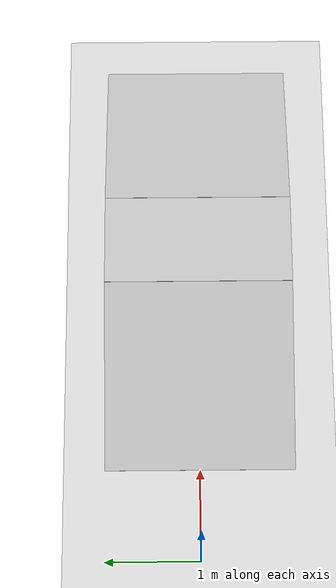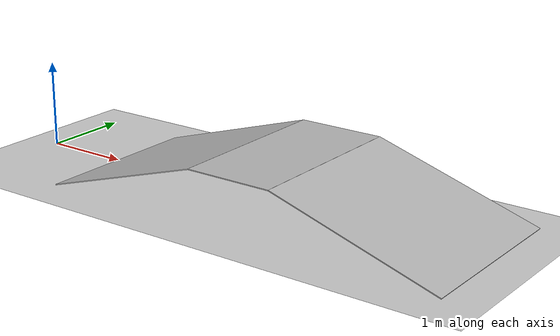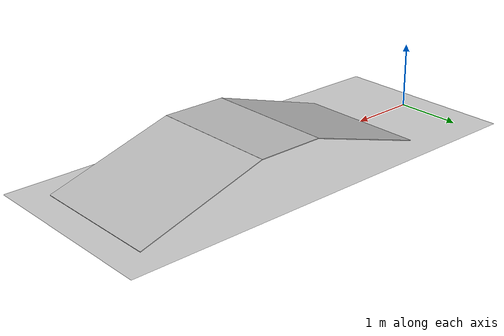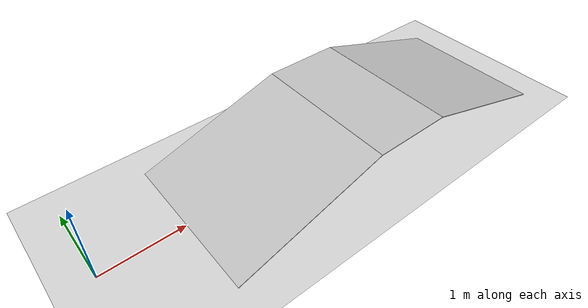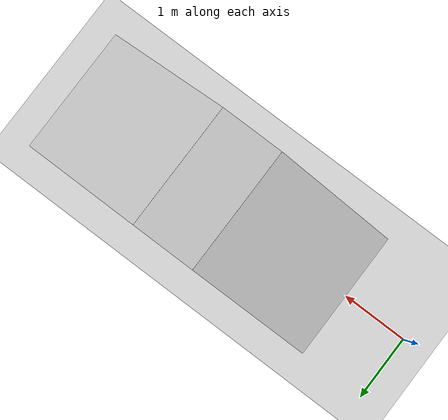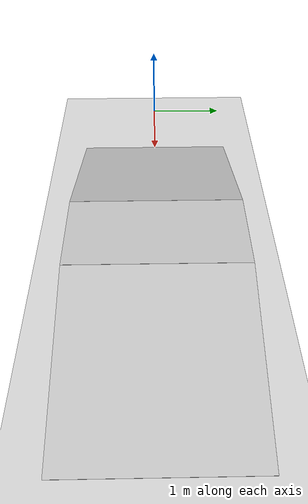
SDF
<?xml version="1.0" ?>
<sdf version="1.4">
  <world name="default">
    <include>
      <uri>model://ground_plane</uri>
    </include>
    <include>
      <uri>model://sun</uri>
    </include>
    <include>
    <uri>model://gazebo_worlds/models/slope</uri>
      <pose>0 0 0 0 0 0</pose>
      <static>true</static>
    </include>

    <physics type="ode">
      <gravity>0 0 -9.81</gravity>
    </physics>
  </world>
</sdf>

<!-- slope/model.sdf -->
<sdf version="1.4">

  <model name="slope">
    <static>true</static>
    <pose>0.5 0 0 0 0 0</pose>

    <link name="slope_up">
    <pose>1.95533648913 0 0.295520206661 0 -0.3 0</pose>
      <collision name="collision">
        <geometry>
          <box>
            <size>2.0 2 0.01</size>
          </box>
        </geometry>
      </collision>
      <visual name="visual">
        <geometry>
          <box>
            <size>2.0 2 0.01</size>
          </box>
        </geometry>
      </visual>
    </link>

    <link name='slope_zero'>
      <pose>3.41067297825 0 0.591040413323 0 0 0</pose>
      <collision name="collision">
        <geometry>
          <box>
            <size>1.0 2 0.01</size>
          </box>
        </geometry>
      </collision>
      <visual name="visual">
        <geometry>
          <box>
            <size>1.0 2 0.01</size>
          </box>
        </geometry>
      </visual>
    </link>

    <link name="slope_down">
    <pose>4.86600946738 0 0.295520206661 0 0.3 0</pose>
      <collision name="collision">
        <geometry>
          <box>
            <size>2.0 2 0.01</size>
          </box>
        </geometry>
      </collision>
      <visual name="visual">
        <geometry>
          <box>
            <size>2.0 2 0.01</size>
          </box>
        </geometry>
      </visual>
    </link>

  </model>
</sdf>
